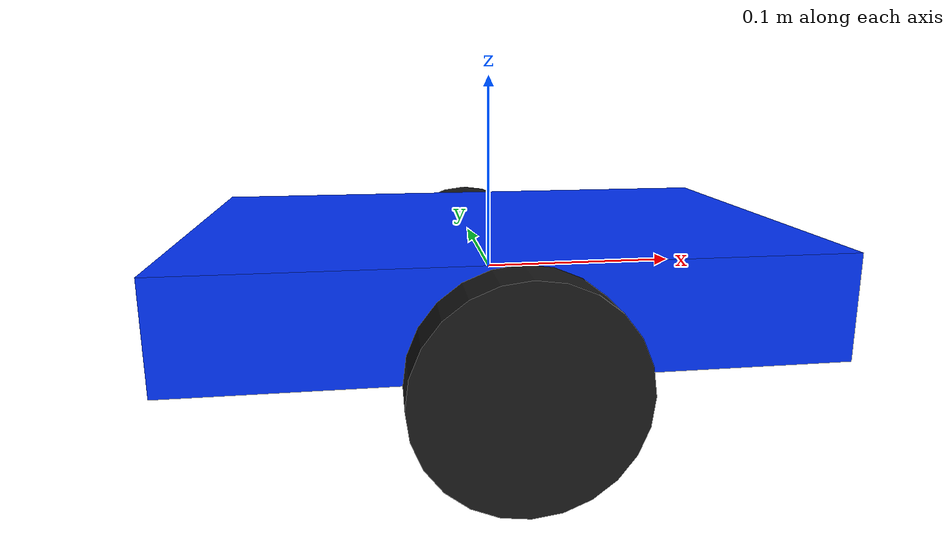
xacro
<?xml version="1.0"?>

<robot name="line_follower_robot"
       xmlns:xacro="http://www.ros.org/wiki/xacro">

  <xacro:include filename="$(find line_follower_description)/urdf/materials.xacro"/>
  <xacro:include filename="$(find line_follower_description)/urdf/base.xacro"/>
  <xacro:include filename="$(find line_follower_description)/urdf/wheels.xacro"/>

  <xacro:wheel prefix="left" y_position="0.11"/>
  <xacro:wheel prefix="right" y_position="-0.11"/>

    <!-- Gazebo Differential Drive Plugin -->

  <gazebo>

    <plugin
      filename="libgazebo_ros_diff_drive.so"
      name="diff_drive_controller">

      <ros>
        <namespace>/</namespace>
      </ros>

      <update_rate>50</update_rate>

      <left_joint>left_wheel_joint</left_joint>
      <right_joint>right_wheel_joint</right_joint>

      <wheel_separation>0.22</wheel_separation>
      <wheel_diameter>0.10</wheel_diameter>

      <command_topic>cmd_vel</command_topic>

      <odometry_topic>odom</odometry_topic>

      <odometry_frame>odom</odometry_frame>
      <robot_base_frame>base_link</robot_base_frame>

      <publish_odom>true</publish_odom>
      <publish_tf>true</publish_tf>

    </plugin>

  </gazebo>

</robot>

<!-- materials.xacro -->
<robot xmlns:xacro="http://www.ros.org/wiki/xacro">

  <material name="blue">
    <color rgba="0.0 0.2 1.0 1.0"/>
  </material>

  <material name="black">
    <color rgba="0.1 0.1 0.1 1.0"/>
  </material>

  <material name="white">
    <color rgba="1.0 1.0 1.0 1.0"/>
  </material>

  <material name="red">
    <color rgba="1.0 0.0 0.0 1.0"/>
  </material>

</robot>

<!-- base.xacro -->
<robot xmlns:xacro="http://www.ros.org/wiki/xacro">

  <link name="base_link">

    <visual>
      <geometry>
        <box size="0.30 0.20 0.05"/>
      </geometry>
      <material name="blue"/>
    </visual>

    <collision>
      <geometry>
        <box size="0.30 0.20 0.05"/>
      </geometry>
    </collision>

    <inertial>
      <mass value="2.0"/>
      <origin xyz="0 0 0"/>
      <inertia
        ixx="0.02"
        iyy="0.02"
        izz="0.02"
        ixy="0"
        ixz="0"
        iyz="0"/>
    </inertial>

  </link>

</robot>

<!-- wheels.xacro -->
<robot xmlns:xacro="http://www.ros.org/wiki/xacro">

    <xacro:macro name="wheel" params="prefix y_position">
        <link name="${prefix}_wheel">

  <visual>
    <origin xyz="0 0 0" rpy="1.5708 0 0"/>

    <geometry>
      <cylinder radius="0.05" length="0.03"/>
    </geometry>

    <material name="black"/>
  </visual>

  <collision>
    <origin xyz="0 0 0" rpy="1.5708 0 0"/>

    <geometry>
      <cylinder radius="0.05" length="0.03"/>
    </geometry>
  </collision>

  <inertial>
    <mass value="0.3"/>

    <origin xyz="0 0 0"/>

    <inertia
      ixx="0.001"
      iyy="0.001"
      izz="0.001"
      ixy="0"
      ixz="0"
      iyz="0"/>
  </inertial>

</link>
<joint name="${prefix}_wheel_joint" type="continuous">

  <parent link="base_link"/>

  <child link="${prefix}_wheel"/>

  <origin xyz="0 ${y_position} -0.025" rpy="0 0 0"/>

  <axis xyz="0 1 0"/>

</joint>

    </xacro:macro>

</robot>
